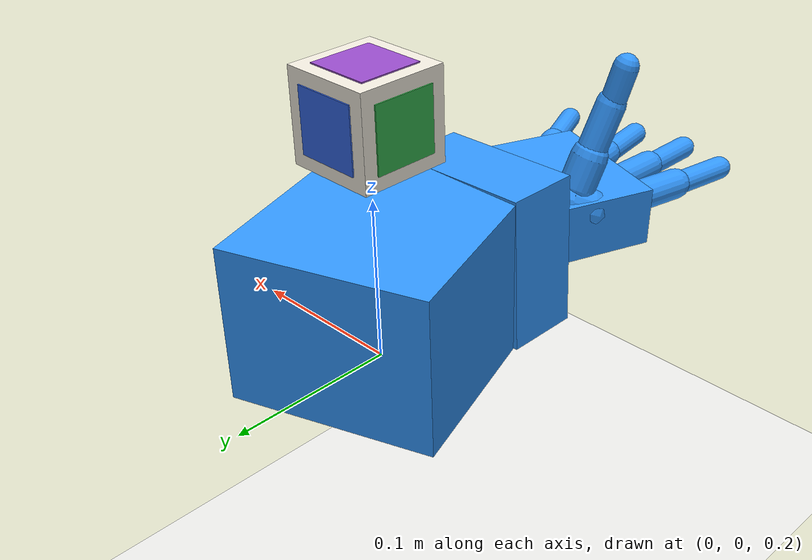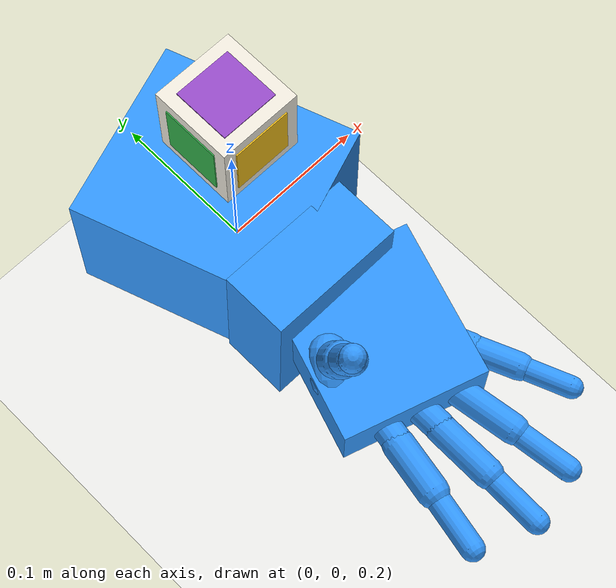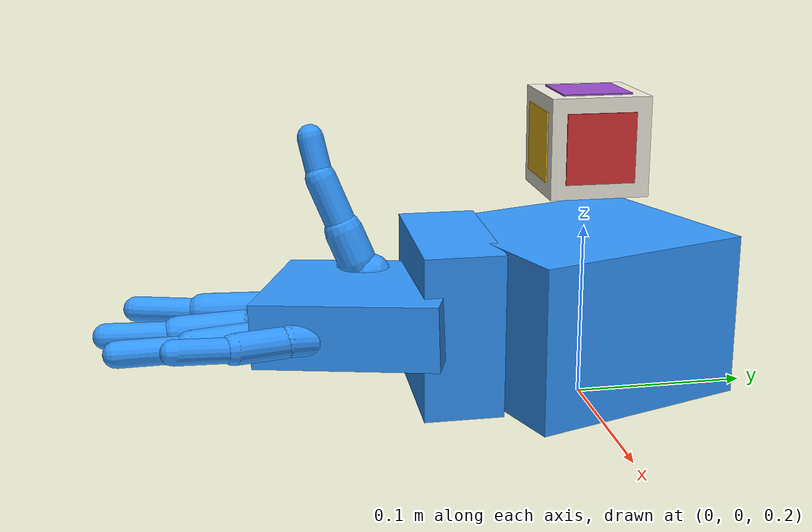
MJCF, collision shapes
<mujoco model="orca_cubo_rl">
  <compiler angle="radian" meshdir="../third_party/orcahand_description/v2/"/>

  <option timestep="0.005" impratio="2" cone="elliptic"/>

  <visual>
    <global offwidth="1920" offheight="1080"/>
    <headlight ambient="0.35 0.35 0.35"/>
  </visual>

  <default>
    <mesh scale="0.001 0.001 0.001"/>
    <joint limited="true" margin="0.01" armature="0.001" damping="0.1" frictionloss="0.001"/>
    <geom type="mesh" friction="1 0.005 0.001" margin="0.0005"/>
    <general ctrllimited="true" forcelimited="true" forcerange="-1 1" biastype="affine" gainprm="2" biasprm="0 -2"/>
    <default class="visual_base">
      <geom contype="0" conaffinity="0" condim="1" group="2" friction="1 0.005 0.0001" margin="0"/>
      <default class="skin">
        <geom material="white"/>
      </default>
      <default class="bone">
        <geom material="black"/>
      </default>
    </default>
    <default class="collision">
      <geom group="1" friction="1 0.005 0.0001" margin="0" material="invisible"/>
    </default>
  </default>

  <asset>
    <texture type="skybox" colorspace="auto" name="cielo" builtin="gradient" rgb1="1 1 1" rgb2="0.86 0.88 0.9" width="512" height="3072"/>
    <material name="white" specular="0.005" shininess="0.02"/>
    <material name="black" specular="0.1" rgba="0.1569 0.1569 0.1569 1"/>
    <material name="invisible" specular="0" shininess="0" rgba="1 1 1 0"/>
    <mesh name="right_I-R-Assembly" file="models/assets/right/I-R-Assembly.stl"/>
    <mesh name="right_P-Assembly" file="models/assets/right/P-Assembly.stl"/>
    <mesh name="right_R-T-AP" file="models/assets/right/R-T-AP.stl"/>
    <mesh name="right_M-PP" file="models/assets/right/M-PP.stl"/>
    <mesh name="right_I-PP" file="models/assets/right/I-PP.stl"/>
    <mesh name="right_P-AP" file="models/assets/right/P-AP.stl"/>
    <mesh name="right_ForeArmStructure-Model" file="models/assets/right/ForeArmStructure-Model.stl"/>
    <mesh name="right_P-FingerTipAssembly" file="models/assets/right/P-FingerTipAssembly.stl"/>
    <mesh name="right_T-DP" file="models/assets/right/T-DP.stl"/>
    <mesh name="right_TopTower-Model" file="models/assets/right/TopTower-Model.stl"/>
    <mesh name="right_I-FingerTipAssembly" file="models/assets/right/I-FingerTipAssembly.stl"/>
    <mesh name="right_I-AP-R" file="models/assets/right/I-AP-R.stl"/>
    <mesh name="right_T-TP-R" file="models/assets/right/T-TP-R.stl"/>
    <mesh name="right_R-Carpals" file="models/assets/right/R-Carpals.stl"/>
    <mesh name="right_T-PP" file="models/assets/right/T-PP.stl"/>
    <mesh name="right_M-AP" file="models/assets/right/M-AP.stl"/>
    <mesh name="right_M-FingerTipAssembly" file="models/assets/right/M-FingerTipAssembly.stl"/>
    <mesh name="right_T-R-Assembly" file="models/assets/right/T-R-Assembly.stl"/>
    <mesh name="right_P-PP" file="models/assets/right/P-PP.stl"/>
    <mesh name="right_ForeArmStructure-Model_Logo" file="models/assets/right/ForeArmStructure-Model_Logo.stl"/>
    <mesh name="right_M-Assembly" file="models/assets/right/M-Assembly.stl"/>
    <mesh name="right_T-PP_Skin" file="models/assets/right/T-PP_Skin.stl"/>
    <mesh name="right_P-IP_IP" file="models/assets/right/P-IP_IP.stl"/>
    <mesh name="right_M-PP_PP" file="models/assets/right/M-PP_PP.stl"/>
    <mesh name="right_M-PP_Skin" file="models/assets/right/M-PP_Skin.stl"/>
    <mesh name="right_T-DP_Skin" file="models/assets/right/T-DP_Skin.stl"/>
    <mesh name="right_P-FingerTipAssembly_P-DP-Skin" file="models/assets/right/P-FingerTipAssembly_P-DP-Skin.stl"/>
    <mesh name="right_T-PP_PP" file="models/assets/right/T-PP_PP.stl"/>
    <mesh name="right_I-IP_IP" file="models/assets/right/I-IP_IP.stl"/>
    <mesh name="right_T-DP_T-DP" file="models/assets/right/T-DP_T-DP.stl"/>
    <mesh name="right_P-PP_Skin" file="models/assets/right/P-PP_Skin.stl"/>
    <mesh name="right_I-PP_PP" file="models/assets/right/I-PP_PP.stl"/>
    <mesh name="right_I-FingerTipAssembly_I-DP-Skin" file="models/assets/right/I-FingerTipAssembly_I-DP-Skin.stl"/>
    <mesh name="right_P-PP_PP" file="models/assets/right/P-PP_PP.stl"/>
    <mesh name="right_I-PP_Skin" file="models/assets/right/I-PP_Skin.stl"/>
    <mesh name="right_M-IP_IP" file="models/assets/right/M-IP_IP.stl"/>
    <mesh name="right_M-FingerTipAssembly_M-DP-Skin" file="models/assets/right/M-FingerTipAssembly_M-DP-Skin.stl"/>
  </asset>

  <worldbody>
    <geom name="pavimento" size="2 2 0.05" type="plane" contype="0" conaffinity="0" rgba="0.93 0.93 0.92 1"/>
    <camera name="vista" pos="0.22 -0.42 0.52" quat="0.85937 0.450024 0.112647 0.215112" fovy="40"/>
    <light pos="0.3 -0.4 1" dir="-0.268328 0.357771 -0.894427"/>
    <light pos="-0.4 0.3 0.9" dir="0.357771 -0.268328 -0.894427" castshadow="false" diffuse="0.35 0.35 0.35"/>
    <body name="palmo_su" pos="0 0 0.25" quat="0.707105 0.707108 0 0">
      <body name="right_mount" quat="0.707105 0.707108 0 0">
        <body name="right_tower">
          <body name="right_ForeArmStructure-Model_e18f2368">
            <geom contype="0" conaffinity="0" group="2" material="white" mesh="right_ForeArmStructure-Model_Logo"/>
            <geom contype="0" conaffinity="0" group="2" material="black" mesh="right_ForeArmStructure-Model"/>
            <geom name="col_right_ForeArmStructure-Model_e18f2368" size="0.0654294 0.0602976 0.04656" pos="-0.01 -0.00285 0" quat="0.578037 0 0 -0.81601" type="box" group="3" friction="1 0.005 0.0001" rgba="0.2 0.6 1 0.3"/>
            <body name="right_TopTower-Model_4a80d30e" pos="-0.01 0.0523 0" quat="-0.5 0.5 -0.5 -0.5">
              <geom contype="0" conaffinity="0" group="2" material="black" mesh="right_TopTower-Model"/>
              <geom name="col_right_TopTower-Model_4a80d30e" size="0.0457643 0.04718 0.022576" pos="3.05593e-06 -1.19463e-05 0.0232448" quat="0.0001464 -0.697629 0.716459 0.000243773" type="box" group="3" friction="1 0.005 0.0001" rgba="0.2 0.6 1 0.3"/>
              <body name="right_R-Carpals_8d1f1041" pos="-0.00187708 0.005 0.0895" quat="-0.707107 0 0 0.707107">
                <geom contype="0" conaffinity="0" group="2" material="black" mesh="right_R-Carpals"/>
                <geom name="col_right_R-Carpals_8d1f1041" size="0.0514773 0.0466126 0.0180849" pos="0.00886567 0.00577623 -0.0142987" quat="0.573505 -0.571025 0.403073 0.427265" type="box" group="3" friction="1 0.005 0.0001" rgba="0.2 0.6 1 0.3"/>
                <body name="right_T-TP-R_1c2b802d" pos="-0.0212134 0.0143325 -0.0217248" quat="0.659119 0.359511 -0.0724731 -0.656553">
                  <joint name="right_t-cmc" pos="0 0 0.00385" axis="0 0 -1" range="-0.785398 0.575959"/>
                  <geom contype="0" conaffinity="0" group="2" material="black" mesh="right_T-TP-R"/>
                  <geom name="col_right_T-TP-R_1c2b802d" size="0.0124315 0.00712323" pos="-0.00393766 -0.00144402 0.00389278" quat="0.999975 -0.00638294 0.00309316 0" type="capsule" group="3" friction="1 0.005 0.0001" rgba="0.2 0.6 1 0.3"/>
                  <body name="right_R-T-AP_a9723101" pos="-0.036 0 0" quat="0.819152 -0.573576 0 0">
                    <joint name="right_t-abd" pos="0.028 0 0" axis="0 0.34202 0.939693" range="-0.314159 0.959931"/>
                    <geom contype="0" conaffinity="0" group="2" material="black" mesh="right_R-T-AP"/>
                    <geom name="col_right_R-T-AP_a9723101" size="0.0112268 0.00980622" pos="0.0120485 1.96545e-05 4.47367e-05" quat="0.708431 -0.00119357 0.705779 0" type="capsule" group="3" friction="1 0.005 0.0001" rgba="0.2 0.6 1 0.3"/>
                    <body name="right_T-PP_68395e98" pos="0 0 0" quat="0 0.707107 0 -0.707107">
                      <joint name="right_t-mcp" pos="0 0 0" axis="0 -1 0" range="-0.436332 1.74533"/>
                      <geom contype="0" conaffinity="0" group="2" material="white" mesh="right_T-PP_Skin"/>
                      <geom contype="0" conaffinity="0" group="2" material="black" mesh="right_T-PP_PP"/>
                      <geom name="col_right_T-PP_68395e98" size="0.0090975 0.015442" pos="0.00038209 -0.000174885 0.0155092" quat="0.00928553 0.504382 -0.863431 0" type="capsule" group="3" friction="1 0.005 0.0001" rgba="0.2 0.6 1 0.3"/>
                      <body name="right_T-DP_b7429e50" pos="0.001 0 0.032" quat="1 0 0 0">
                        <joint name="right_t-pip" pos="0 0 0" axis="0 -1 0" range="-0.261799 1.8675"/>
                        <geom contype="0" conaffinity="0" group="2" material="white" mesh="right_T-DP_Skin"/>
                        <geom contype="0" conaffinity="0" group="2" material="black" mesh="right_T-DP_T-DP"/>
                        <geom name="col_right_T-DP_b7429e50" size="0.00765234 0.0117268" pos="0.00214765 -7.27148e-05 0.011074" quat="0.995304 0.019498 0.0948161 0" type="capsule" group="3" friction="1 0.005 0.0001" rgba="0.2 0.6 1 0.3"/>
                      </body>
                    </body>
                  </body>
                </body>
                <body name="right_I-AP-R_d95d02d1" pos="-0.0255755 0.000680925 0.0383573" quat="0.519647 0.566724 0.43173 -0.471593">
                  <joint name="right_i-abd" pos="0.01875 0 0.001" axis="0 0 1" range="-0.436332 0.523599"/>
                  <geom contype="0" conaffinity="0" group="2" material="black" mesh="right_I-AP-R"/>
                  <geom name="col_right_I-AP-R_d95d02d1" size="0.00913213 0.00780648" pos="0.00744958 1.59884e-05 0.00020207" quat="0.716704 -0.00148783 0.697376 0" type="capsule" group="3" friction="1 0.005 0.0001" rgba="0.2 0.6 1 0.3"/>
                  <body name="right_I-PP_bacbd481" pos="-0.000400968 0 0" quat="0.707107 0 -0.707107 0">
                    <joint name="right_i-mcp" pos="0 0 0" axis="0 -1 0" range="-0.436332 1.74533"/>
                    <geom contype="0" conaffinity="0" group="2" material="white" mesh="right_I-PP_Skin"/>
                    <geom contype="0" conaffinity="0" group="2" material="black" mesh="right_I-PP_PP"/>
                    <geom name="col_right_I-PP_bacbd481" size="0.00987626 0.0174197" pos="0.000929455 -0.00013154 0.0177581" quat="0.999883 -0.00492871 0.0144684 0" type="capsule" group="3" friction="1 0.005 0.0001" rgba="0.2 0.6 1 0.3"/>
                    <body name="right_I-FingerTipAssembly_ec49c16c" pos="0.0015 0 0.037" quat="1 0 0 0">
                      <joint name="right_i-pip" pos="0 0 0" axis="0 -1 0" range="-0.261799 1.8675"/>
                      <geom contype="0" conaffinity="0" group="2" material="black" mesh="right_I-IP_IP"/>
                      <geom contype="0" conaffinity="0" group="2" material="white" mesh="right_I-FingerTipAssembly_I-DP-Skin"/>
                      <geom name="col_right_I-FingerTipAssembly_ec49c16c" size="0.00747094 0.0192354" pos="0.00017654 -0.000412653 0.0186647" quat="0.0162862 -0.709695 0.704321 0" type="capsule" group="3" friction="1 0.005 0.0001" rgba="0.2 0.6 1 0.3"/>
                    </body>
                  </body>
                </body>
                <body name="right_M-AP_e04a96f2" pos="-0.00075673 -0.00114633 0.0482518" quat="-0.500654 -0.500654 -0.499345 0.499345">
                  <joint name="right_m-abd" pos="0.01925 0 0.001" axis="0 0 1" range="-0.471239 0.471239"/>
                  <geom contype="0" conaffinity="0" group="2" material="black" mesh="right_M-AP"/>
                  <geom name="col_right_M-AP_e04a96f2" size="0.00928975 0.0080139" pos="0.00732468 -9.13779e-06 0.000138867" quat="0.713762 0.00087576 0.700388 0" type="capsule" group="3" friction="1 0.005 0.0001" rgba="0.2 0.6 1 0.3"/>
                  <body name="right_M-PP_08efa608" pos="-0.000616968 0 0" quat="-0.707107 0 0.707107 0">
                    <joint name="right_m-mcp" pos="0 0 0" axis="0 -1 0" range="-0.436332 1.74533"/>
                    <geom contype="0" conaffinity="0" group="2" material="white" mesh="right_M-PP_Skin"/>
                    <geom contype="0" conaffinity="0" group="2" material="black" mesh="right_M-PP_PP"/>
                    <geom name="col_right_M-PP_08efa608" size="0.00929709 0.0197546" pos="0.000841422 -0.000142658 0.0190154" quat="0.999791 -0.00463702 0.0198904 0" type="capsule" group="3" friction="1 0.005 0.0001" rgba="0.2 0.6 1 0.3"/>
                    <body name="right_M-FingerTipAssembly_34afb748" pos="0.002 0 0.04" quat="1 0 0 0">
                      <joint name="right_m-pip" pos="0 0 0" axis="0 -1 0" range="-0.261799 1.8675"/>
                      <geom contype="0" conaffinity="0" group="2" material="white" mesh="right_M-FingerTipAssembly_M-DP-Skin"/>
                      <geom contype="0" conaffinity="0" group="2" material="black" mesh="right_M-IP_IP"/>
                      <geom name="col_right_M-FingerTipAssembly_34afb748" size="0.00745144 0.0192453" pos="0.00021351 -0.000411828 0.018655" quat="0.014837 -0.775169 0.63158 0" type="capsule" group="3" friction="1 0.005 0.0001" rgba="0.2 0.6 1 0.3"/>
                    </body>
                  </body>
                </body>
                <body name="right_M-AP_6ec59111" pos="0.0230054 -0.00010145 0.0408507" quat="-0.485171 -0.438492 -0.554729 0.514401">
                  <joint name="right_r-abd" pos="0.01925 0 0.001" axis="0 0 1" range="-0.471239 0.471239"/>
                  <geom contype="0" conaffinity="0" group="2" material="black" mesh="right_M-AP"/>
                  <geom name="col_right_M-AP_6ec59111" size="0.00928975 0.0080139" pos="0.00732468 -9.13779e-06 0.000138867" quat="0.713762 0.00087576 0.700388 0" type="capsule" group="3" friction="1 0.005 0.0001" rgba="0.2 0.6 1 0.3"/>
                  <body name="right_M-PP_8660a1eb" pos="-0.000616968 0 0" quat="-0.707107 0 0.707107 0">
                    <joint name="right_r-mcp" pos="0 0 0" axis="0 -1 0" range="-0.436332 1.74533"/>
                    <geom contype="0" conaffinity="0" group="2" material="white" mesh="right_M-PP_Skin"/>
                    <geom contype="0" conaffinity="0" group="2" material="black" mesh="right_M-PP_PP"/>
                    <geom name="col_right_M-PP_8660a1eb" size="0.00929709 0.0197546" pos="0.000841422 -0.000142658 0.0190154" quat="0.999791 -0.00463702 0.0198904 0" type="capsule" group="3" friction="1 0.005 0.0001" rgba="0.2 0.6 1 0.3"/>
                    <body name="right_M-FingerTipAssembly_424a8e75" pos="0.002 0 0.04" quat="1 0 0 0">
                      <joint name="right_r-pip" pos="0 0 0" axis="0 -1 0" range="-0.261799 1.8675"/>
                      <geom contype="0" conaffinity="0" group="2" material="white" mesh="right_M-FingerTipAssembly_M-DP-Skin"/>
                      <geom contype="0" conaffinity="0" group="2" material="black" mesh="right_M-IP_IP"/>
                      <geom name="col_right_M-FingerTipAssembly_424a8e75" size="0.00745144 0.0192453" pos="0.00021351 -0.000411828 0.018655" quat="0.014837 -0.775169 0.63158 0" type="capsule" group="3" friction="1 0.005 0.0001" rgba="0.2 0.6 1 0.3"/>
                    </body>
                  </body>
                </body>
                <body name="right_P-AP_f5e42b61" pos="0.0466688 0.00500098 0.0291014" quat="-0.457318 -0.340199 -0.613869 0.546159">
                  <joint name="right_p-abd" pos="0.01775 0 0.001" axis="0 0 1" range="-0.523599 0.523599"/>
                  <geom contype="0" conaffinity="0" group="2" material="black" mesh="right_P-AP"/>
                  <geom name="col_right_P-AP_f5e42b61" size="0.00869422 0.00696417" pos="0.00715211 4.28684e-06 0.000195208" quat="0.716763 -0.000347319 0.697317 0" type="capsule" group="3" friction="1 0.005 0.0001" rgba="0.2 0.6 1 0.3"/>
                  <body name="right_P-PP_1d411b9b" pos="0 0 0" quat="-0.707107 0 0.707107 0">
                    <joint name="right_p-mcp" pos="0 0 0" axis="0 -1 0" range="-0.436332 1.74533"/>
                    <geom contype="0" conaffinity="0" group="2" material="white" mesh="right_P-PP_Skin"/>
                    <geom contype="0" conaffinity="0" group="2" material="black" mesh="right_P-PP_PP"/>
                    <geom name="col_right_P-PP_1d411b9b" size="0.00856293 0.0149817" pos="0.000663071 -0.000187432 0.0150186" quat="0.999896 -0.00614065 0.0130175 0" type="capsule" group="3" friction="1 0.005 0.0001" rgba="0.2 0.6 1 0.3"/>
                    <body name="right_P-FingerTipAssembly_cd219176" pos="0.001 0 0.031" quat="1 0 0 0">
                      <joint name="right_p-pip" pos="0 0 0" axis="0 -1 0" range="-0.261799 1.8675"/>
                      <geom contype="0" conaffinity="0" group="2" material="black" mesh="right_P-IP_IP"/>
                      <geom contype="0" conaffinity="0" group="2" material="white" mesh="right_P-FingerTipAssembly_P-DP-Skin"/>
                      <geom name="col_right_P-FingerTipAssembly_cd219176" size="0.00686443 0.0161703" pos="-0.00053621 -0.000300508 0.0154982" quat="0.0321189 -0.302944 0.952467 0" type="capsule" group="3" friction="1 0.005 0.0001" rgba="0.2 0.6 1 0.3"/>
                    </body>
                  </body>
                </body>
              </body>
            </body>
          </body>
        </body>
      </body>
    </body>
    <body name="cubo" pos="0 0 0.35">
      <joint name="cubo_libero" type="free" margin="0" armature="0" damping="0" frictionloss="0"/>
      <geom name="cubo_col" size="0.0275 0.0275 0.0275" type="box" condim="4" friction="1 0.005 0.0001" mass="0.06" rgba="0.95 0.93 0.88 1"/>
      <geom name="faccia0" size="0.0008 0.01925 0.01925" pos="0.0275 0 0" type="box" contype="0" conaffinity="0" group="1" mass="0" rgba="0.85 0.2 0.2 1"/>
      <geom name="faccia1" size="0.0008 0.01925 0.01925" pos="-0.0275 0 0" type="box" contype="0" conaffinity="0" group="1" mass="0" rgba="0.2 0.7 0.3 1"/>
      <geom name="faccia2" size="0.01925 0.0008 0.01925" pos="0 0.0275 0" type="box" contype="0" conaffinity="0" group="1" mass="0" rgba="0.2 0.4 0.9 1"/>
      <geom name="faccia3" size="0.01925 0.0008 0.01925" pos="0 -0.0275 0" type="box" contype="0" conaffinity="0" group="1" mass="0" rgba="0.95 0.75 0.1 1"/>
      <geom name="faccia4" size="0.01925 0.01925 0.0008" pos="0 0 0.0275" type="box" contype="0" conaffinity="0" group="1" mass="0" rgba="0.6 0.3 0.8 1"/>
      <geom name="faccia5" size="0.01925 0.01925 0.0008" pos="0 0 -0.0275" type="box" contype="0" conaffinity="0" group="1" mass="0" rgba="0.1 0.75 0.8 1"/>
    </body>
  </worldbody>

  <contact>
    <exclude body1="right_ForeArmStructure-Model_e18f2368" body2="right_TopTower-Model_4a80d30e"/>
    <exclude body1="right_ForeArmStructure-Model_e18f2368" body2="right_R-Carpals_8d1f1041"/>
    <exclude body1="right_ForeArmStructure-Model_e18f2368" body2="right_T-TP-R_1c2b802d"/>
    <exclude body1="right_ForeArmStructure-Model_e18f2368" body2="right_R-T-AP_a9723101"/>
    <exclude body1="right_ForeArmStructure-Model_e18f2368" body2="right_T-PP_68395e98"/>
    <exclude body1="right_ForeArmStructure-Model_e18f2368" body2="right_T-DP_b7429e50"/>
    <exclude body1="right_ForeArmStructure-Model_e18f2368" body2="right_I-AP-R_d95d02d1"/>
    <exclude body1="right_ForeArmStructure-Model_e18f2368" body2="right_I-PP_bacbd481"/>
    <exclude body1="right_ForeArmStructure-Model_e18f2368" body2="right_I-FingerTipAssembly_ec49c16c"/>
    <exclude body1="right_ForeArmStructure-Model_e18f2368" body2="right_M-AP_e04a96f2"/>
    <exclude body1="right_ForeArmStructure-Model_e18f2368" body2="right_M-PP_08efa608"/>
    <exclude body1="right_ForeArmStructure-Model_e18f2368" body2="right_M-FingerTipAssembly_34afb748"/>
    <exclude body1="right_ForeArmStructure-Model_e18f2368" body2="right_M-AP_6ec59111"/>
    <exclude body1="right_ForeArmStructure-Model_e18f2368" body2="right_M-PP_8660a1eb"/>
    <exclude body1="right_ForeArmStructure-Model_e18f2368" body2="right_M-FingerTipAssembly_424a8e75"/>
    <exclude body1="right_ForeArmStructure-Model_e18f2368" body2="right_P-AP_f5e42b61"/>
    <exclude body1="right_ForeArmStructure-Model_e18f2368" body2="right_P-PP_1d411b9b"/>
    <exclude body1="right_ForeArmStructure-Model_e18f2368" body2="right_P-FingerTipAssembly_cd219176"/>
    <exclude body1="right_TopTower-Model_4a80d30e" body2="right_R-Carpals_8d1f1041"/>
    <exclude body1="right_TopTower-Model_4a80d30e" body2="right_T-TP-R_1c2b802d"/>
    <exclude body1="right_TopTower-Model_4a80d30e" body2="right_R-T-AP_a9723101"/>
    <exclude body1="right_TopTower-Model_4a80d30e" body2="right_T-PP_68395e98"/>
    <exclude body1="right_TopTower-Model_4a80d30e" body2="right_T-DP_b7429e50"/>
    <exclude body1="right_TopTower-Model_4a80d30e" body2="right_I-AP-R_d95d02d1"/>
    <exclude body1="right_TopTower-Model_4a80d30e" body2="right_I-PP_bacbd481"/>
    <exclude body1="right_TopTower-Model_4a80d30e" body2="right_I-FingerTipAssembly_ec49c16c"/>
    <exclude body1="right_TopTower-Model_4a80d30e" body2="right_M-AP_e04a96f2"/>
    <exclude body1="right_TopTower-Model_4a80d30e" body2="right_M-PP_08efa608"/>
    <exclude body1="right_TopTower-Model_4a80d30e" body2="right_M-FingerTipAssembly_34afb748"/>
    <exclude body1="right_TopTower-Model_4a80d30e" body2="right_M-AP_6ec59111"/>
    <exclude body1="right_TopTower-Model_4a80d30e" body2="right_M-PP_8660a1eb"/>
    <exclude body1="right_TopTower-Model_4a80d30e" body2="right_M-FingerTipAssembly_424a8e75"/>
    <exclude body1="right_TopTower-Model_4a80d30e" body2="right_P-AP_f5e42b61"/>
    <exclude body1="right_TopTower-Model_4a80d30e" body2="right_P-PP_1d411b9b"/>
    <exclude body1="right_TopTower-Model_4a80d30e" body2="right_P-FingerTipAssembly_cd219176"/>
    <exclude body1="right_R-Carpals_8d1f1041" body2="right_T-TP-R_1c2b802d"/>
    <exclude body1="right_R-Carpals_8d1f1041" body2="right_R-T-AP_a9723101"/>
    <exclude body1="right_R-Carpals_8d1f1041" body2="right_T-PP_68395e98"/>
    <exclude body1="right_R-Carpals_8d1f1041" body2="right_T-DP_b7429e50"/>
    <exclude body1="right_R-Carpals_8d1f1041" body2="right_I-AP-R_d95d02d1"/>
    <exclude body1="right_R-Carpals_8d1f1041" body2="right_I-PP_bacbd481"/>
    <exclude body1="right_R-Carpals_8d1f1041" body2="right_I-FingerTipAssembly_ec49c16c"/>
    <exclude body1="right_R-Carpals_8d1f1041" body2="right_M-AP_e04a96f2"/>
    <exclude body1="right_R-Carpals_8d1f1041" body2="right_M-PP_08efa608"/>
    <exclude body1="right_R-Carpals_8d1f1041" body2="right_M-FingerTipAssembly_34afb748"/>
    <exclude body1="right_R-Carpals_8d1f1041" body2="right_M-AP_6ec59111"/>
    <exclude body1="right_R-Carpals_8d1f1041" body2="right_M-PP_8660a1eb"/>
    <exclude body1="right_R-Carpals_8d1f1041" body2="right_M-FingerTipAssembly_424a8e75"/>
    <exclude body1="right_R-Carpals_8d1f1041" body2="right_P-AP_f5e42b61"/>
    <exclude body1="right_R-Carpals_8d1f1041" body2="right_P-PP_1d411b9b"/>
    <exclude body1="right_R-Carpals_8d1f1041" body2="right_P-FingerTipAssembly_cd219176"/>
    <exclude body1="right_T-TP-R_1c2b802d" body2="right_R-T-AP_a9723101"/>
    <exclude body1="right_T-TP-R_1c2b802d" body2="right_T-PP_68395e98"/>
    <exclude body1="right_T-TP-R_1c2b802d" body2="right_T-DP_b7429e50"/>
    <exclude body1="right_R-T-AP_a9723101" body2="right_T-PP_68395e98"/>
    <exclude body1="right_R-T-AP_a9723101" body2="right_T-DP_b7429e50"/>
    <exclude body1="right_T-PP_68395e98" body2="right_T-DP_b7429e50"/>
    <exclude body1="right_I-AP-R_d95d02d1" body2="right_I-PP_bacbd481"/>
    <exclude body1="right_I-AP-R_d95d02d1" body2="right_I-FingerTipAssembly_ec49c16c"/>
    <exclude body1="right_I-PP_bacbd481" body2="right_I-FingerTipAssembly_ec49c16c"/>
    <exclude body1="right_M-AP_e04a96f2" body2="right_M-PP_08efa608"/>
    <exclude body1="right_M-AP_e04a96f2" body2="right_M-FingerTipAssembly_34afb748"/>
    <exclude body1="right_M-PP_08efa608" body2="right_M-FingerTipAssembly_34afb748"/>
    <exclude body1="right_M-AP_6ec59111" body2="right_M-PP_8660a1eb"/>
    <exclude body1="right_M-AP_6ec59111" body2="right_M-FingerTipAssembly_424a8e75"/>
    <exclude body1="right_M-PP_8660a1eb" body2="right_M-FingerTipAssembly_424a8e75"/>
    <exclude body1="right_P-AP_f5e42b61" body2="right_P-PP_1d411b9b"/>
    <exclude body1="right_P-AP_f5e42b61" body2="right_P-FingerTipAssembly_cd219176"/>
    <exclude body1="right_P-PP_1d411b9b" body2="right_P-FingerTipAssembly_cd219176"/>
  </contact>

  <actuator>
    <general name="right_p-abd_actuator" joint="right_p-abd" ctrlrange="-0.523599 0.523599"/>
    <general name="right_p-mcp_actuator" joint="right_p-mcp" ctrlrange="-0.436332 1.74533"/>
    <general name="right_p-pip_actuator" joint="right_p-pip" ctrlrange="-0.261799 1.8675"/>
    <general name="right_r-abd_actuator" joint="right_r-abd" ctrlrange="-0.471239 0.471239"/>
    <general name="right_r-mcp_actuator" joint="right_r-mcp" ctrlrange="-0.436332 1.74533"/>
    <general name="right_r-pip_actuator" joint="right_r-pip" ctrlrange="-0.261799 1.8675"/>
    <general name="right_m-abd_actuator" joint="right_m-abd" ctrlrange="-0.471239 0.471239"/>
    <general name="right_m-mcp_actuator" joint="right_m-mcp" ctrlrange="-0.436332 1.74533"/>
    <general name="right_m-pip_actuator" joint="right_m-pip" ctrlrange="-0.261799 1.8675"/>
    <general name="right_i-abd_actuator" joint="right_i-abd" ctrlrange="-0.436332 0.523599"/>
    <general name="right_i-mcp_actuator" joint="right_i-mcp" ctrlrange="-0.436332 1.74533"/>
    <general name="right_i-pip_actuator" joint="right_i-pip" ctrlrange="-0.261799 1.8675"/>
    <general name="right_t-cmc_actuator" joint="right_t-cmc" ctrlrange="-0.785398 0.575959"/>
    <general name="right_t-abd_actuator" joint="right_t-abd" ctrlrange="-0.314159 0.959931"/>
    <general name="right_t-mcp_actuator" joint="right_t-mcp" ctrlrange="-0.436332 1.74533"/>
    <general name="right_t-pip_actuator" joint="right_t-pip" ctrlrange="-0.261799 1.8675"/>
  </actuator>
</mujoco>
